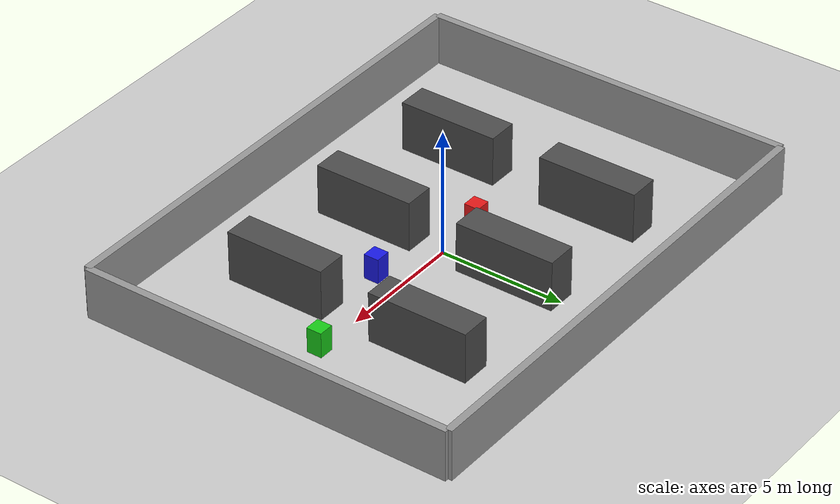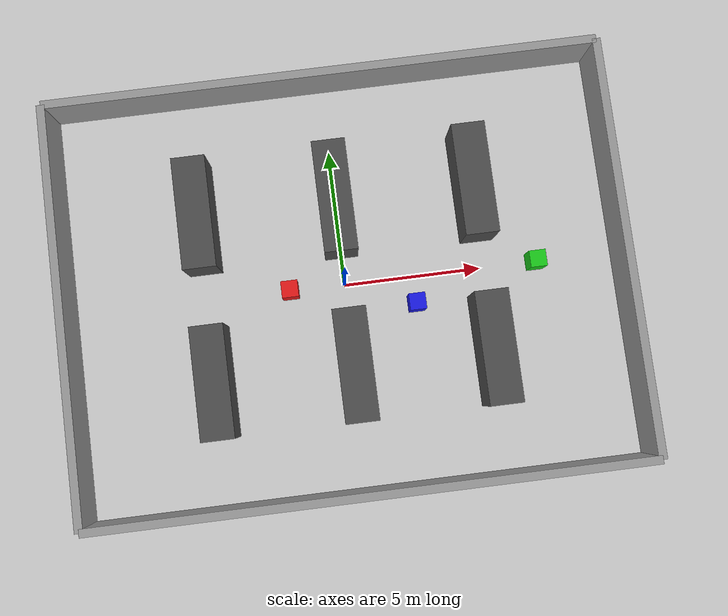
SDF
<?xml version="1.0"?>

<sdf version="1.6">

  <world name="warehouse_world">

    <!-- PHYSICS                        -->

    <physics name="default_physics"
             default="0"
             type="ode">

      <gravity>0 0 -9.81</gravity>

    </physics>

    <!-- WORLD LIGHTING                  -->

    <include>
      <uri>model://sun</uri>
    </include>

    <!-- GROUND                          -->

    <include>
      <uri>model://ground_plane</uri>
    </include>

    <!-- BOUNDARY WALLS                  -->

    <!-- North wall -->

    <model name="north_wall">
      <static>true</static>

      <pose>0 7.5 1 0 0 0</pose>

      <link name="link">

        <collision name="collision">
          <geometry>
            <box>
              <size>20 0.3 2</size>
            </box>
          </geometry>
        </collision>

        <visual name="visual">
          <geometry>
            <box>
              <size>20 0.3 2</size>
            </box>
          </geometry>

          <material>
            <ambient>0.6 0.6 0.6 1</ambient>
          </material>

        </visual>

      </link>

    </model>

    <!-- South wall -->

    <model name="south_wall">
      <static>true</static>

      <pose>0 -7.5 1 0 0 0</pose>

      <link name="link">

        <collision name="collision">
          <geometry>
            <box>
              <size>20 0.3 2</size>
            </box>
          </geometry>
        </collision>

        <visual name="visual">
          <geometry>
            <box>
              <size>20 0.3 2</size>
            </box>
          </geometry>

          <material>
            <ambient>0.6 0.6 0.6 1</ambient>
          </material>

        </visual>

      </link>

    </model>

    <!-- East wall -->

    <model name="east_wall">
      <static>true</static>

      <pose>10 0 1 0 0 0</pose>

      <link name="link">

        <collision name="collision">
          <geometry>
            <box>
              <size>0.3 15 2</size>
            </box>
          </geometry>
        </collision>

        <visual name="visual">
          <geometry>
            <box>
              <size>0.3 15 2</size>
            </box>
          </geometry>

          <material>
            <ambient>0.6 0.6 0.6 1</ambient>
          </material>

        </visual>

      </link>

    </model>

    <!-- West wall -->

    <model name="west_wall">
      <static>true</static>

      <pose>-10 0 1 0 0 0</pose>

      <link name="link">

        <collision name="collision">
          <geometry>
            <box>
              <size>0.3 15 2</size>
            </box>
          </geometry>
        </collision>

        <visual name="visual">
          <geometry>
            <box>
              <size>0.3 15 2</size>
            </box>
          </geometry>

          <material>
            <ambient>0.6 0.6 0.6 1</ambient>
          </material>

        </visual>

      </link>

    </model>

    <!-- WAREHOUSE SHELVES                  -->

    <!-- Shelf Row 1 -->

    <model name="shelf_1">
      <static>true</static>

      <pose>-5 -3 1 0 0 0</pose>

      <link name="link">

        <collision name="collision">
          <geometry>
            <box>
              <size>1.2 4 2</size>
            </box>
          </geometry>
        </collision>

        <visual name="visual">
          <geometry>
            <box>
              <size>1.2 4 2</size>
            </box>
          </geometry>

          <material>
            <ambient>0.3 0.3 0.3 1</ambient>
          </material>

        </visual>

      </link>

    </model>

    <model name="shelf_2">
      <static>true</static>

      <pose>0 -3 1 0 0 0</pose>

      <link name="link">

        <collision name="collision">
          <geometry>
            <box>
              <size>1.2 4 2</size>
            </box>
          </geometry>
        </collision>

        <visual name="visual">
          <geometry>
            <box>
              <size>1.2 4 2</size>
            </box>

          </geometry>

          <material>
            <ambient>0.3 0.3 0.3 1</ambient>
          </material>

        </visual>

      </link>

    </model>

    <model name="shelf_3">
      <static>true</static>

      <pose>5 -3 1 0 0 0</pose>

      <link name="link">

        <collision name="collision">
          <geometry>
            <box>
              <size>1.2 4 2</size>
            </box>
          </geometry>
        </collision>

        <visual name="visual">
          <geometry>
            <box>
              <size>1.2 4 2</size>
            </box>
          </geometry>

          <material>
            <ambient>0.3 0.3 0.3 1</ambient>
          </material>

        </visual>

      </link>

    </model>

    <!-- Shelf Row 2 -->

    <model name="shelf_4">
      <static>true</static>

      <pose>-5 3 1 0 0 0</pose>

      <link name="link">

        <collision name="collision">
          <geometry>
            <box>
              <size>1.2 4 2</size>
            </box>
          </geometry>
        </collision>

        <visual name="visual">
          <geometry>
            <box>
              <size>1.2 4 2</size>
            </box>
          </geometry>

          <material>
            <ambient>0.3 0.3 0.3 1</ambient>
          </material>

        </visual>

      </link>

    </model>

    <model name="shelf_5">
      <static>true</static>

      <pose>0 3 1 0 0 0</pose>

      <link name="link">

        <collision name="collision">
          <geometry>
            <box>
              <size>1.2 4 2</size>
            </box>
          </geometry>
        </collision>

        <visual name="visual">
          <geometry>
            <box>
              <size>1.2 4 2</size>
            </box>
          </geometry>

          <material>
            <ambient>0.3 0.3 0.3 1</ambient>
          </material>

        </visual>

      </link>

    </model>

    <model name="shelf_6">
      <static>true</static>

      <pose>5 3 1 0 0 0</pose>

      <link name="link">

        <collision name="collision">
          <geometry>
            <box>
              <size>1.2 4 2</size>
            </box>
          </geometry>
        </collision>

        <visual name="visual">
          <geometry>
            <box>
              <size>1.2 4 2</size>
            </box>
          </geometry>

          <material>
            <ambient>0.3 0.3 0.3 1</ambient>
          </material>

        </visual>

      </link>

    </model>
    <!-- DYNAMIC OBSTACLE 1 -->

    <model name="dynamic_obstacle_1">

      <static>false</static>

      <!-- Start position -->
      <pose>-2 0 0.5 0 0 0</pose>

      <link name="base_link">

        <inertial>
          <mass>5.0</mass>
          <inertia>
            <ixx>0.1</ixx>
            <iyy>0.1</iyy>
            <izz>0.1</izz>
          </inertia>
        </inertial>

        <collision name="collision">
          <geometry>
            <box>
              <size>0.6 0.6 1.0</size>
            </box>
          </geometry>
        </collision>

        <visual name="visual">
          <geometry>
            <box>
              <size>0.6 0.6 1.0</size>
            </box>
          </geometry>

          <material>
            <ambient>0.9 0.1 0.1 1</ambient>
          </material>
        </visual>

      </link>

      <plugin name="dynamic_obstacle_1_controller"
              filename="libgazebo_planar_move_plugin.so">

        <robot_namespace>/dynamic_obstacle_1</robot_namespace>

        <robot_frame>base_link</robot_frame>

        <odometry_frame>odom</odometry_frame>

        <odometry_topic>/dynamic_obstacle_1/odom</odometry_topic>

        <command_topic>/dynamic_obstacle_1/cmd_vel</command_topic>

        <control_mode>position</control_mode>

        <!-- We don't need obstacle TF/odometry -->
        <publish_odometry>false</publish_odometry>
        <publish_tf>false</publish_tf>
        <publish_imu>false</publish_imu>

        <ground_truth>true</ground_truth>

        <update_rate>50</update_rate>
        <publish_rate>30</publish_rate>

      </plugin>

    </model>
    <!-- DYNAMIC OBSTACLE 2 -->

    <model name="dynamic_obstacle_2">

      <static>false</static>

      <pose>2.5 -1.0 0.5 0 0 0</pose>

      <link name="base_link">

        <inertial>
          <mass>5.0</mass>
          <inertia>
            <ixx>0.1</ixx>
            <iyy>0.1</iyy>
            <izz>0.1</izz>
          </inertia>
        </inertial>

        <collision name="collision">
          <geometry>
            <box>
              <size>0.6 0.6 1.0</size>
            </box>
          </geometry>
        </collision>

        <visual name="visual">
          <geometry>
            <box>
              <size>0.6 0.6 1.0</size>
            </box>
          </geometry>

          <material>
            <ambient>0.1 0.1 0.9 1</ambient>
          </material>
        </visual>

      </link>

      <plugin name="dynamic_obstacle_2_controller"
              filename="libgazebo_planar_move_plugin.so">

        <robot_namespace>/dynamic_obstacle_2</robot_namespace>

        <robot_frame>base_link</robot_frame>

        <odometry_frame>odom</odometry_frame>

        <odometry_topic>/dynamic_obstacle_2/odom</odometry_topic>

        <command_topic>/dynamic_obstacle_2/cmd_vel</command_topic>

        <control_mode>position</control_mode>

        <publish_odometry>false</publish_odometry>
        <publish_tf>false</publish_tf>
        <publish_imu>false</publish_imu>

        <ground_truth>true</ground_truth>

        <update_rate>50</update_rate>
        <publish_rate>30</publish_rate>

      </plugin>

    </model>
    <!-- DYNAMIC OBSTACLE 3 -->

    <model name="dynamic_obstacle_3">

      <static>false</static>

      <pose>7 0 0.5 0 0 0</pose>

      <link name="base_link">

        <inertial>
          <mass>5.0</mass>
          <inertia>
            <ixx>0.1</ixx>
            <iyy>0.1</iyy>
            <izz>0.1</izz>
          </inertia>
        </inertial>

        <collision name="collision">
          <geometry>
            <box>
              <size>0.6 0.6 1.0</size>
            </box>
          </geometry>
        </collision>

        <visual name="visual">
          <geometry>
            <box>
              <size>0.6 0.6 1.0</size>
            </box>
          </geometry>

          <material>
            <ambient>0.1 0.8 0.1 1</ambient>
          </material>
        </visual>

      </link>

      <plugin name="dynamic_obstacle_3_controller"
              filename="libgazebo_planar_move_plugin.so">

        <robot_namespace>/dynamic_obstacle_3</robot_namespace>

        <robot_frame>base_link</robot_frame>

        <odometry_frame>odom</odometry_frame>

        <odometry_topic>/dynamic_obstacle_3/odom</odometry_topic>

        <command_topic>/dynamic_obstacle_3/cmd_vel</command_topic>

        <control_mode>position</control_mode>

        <publish_odometry>false</publish_odometry>
        <publish_tf>false</publish_tf>
        <publish_imu>false</publish_imu>

        <ground_truth>true</ground_truth>

        <update_rate>50</update_rate>
        <publish_rate>30</publish_rate>

      </plugin>

    </model>

  </world>

</sdf>
